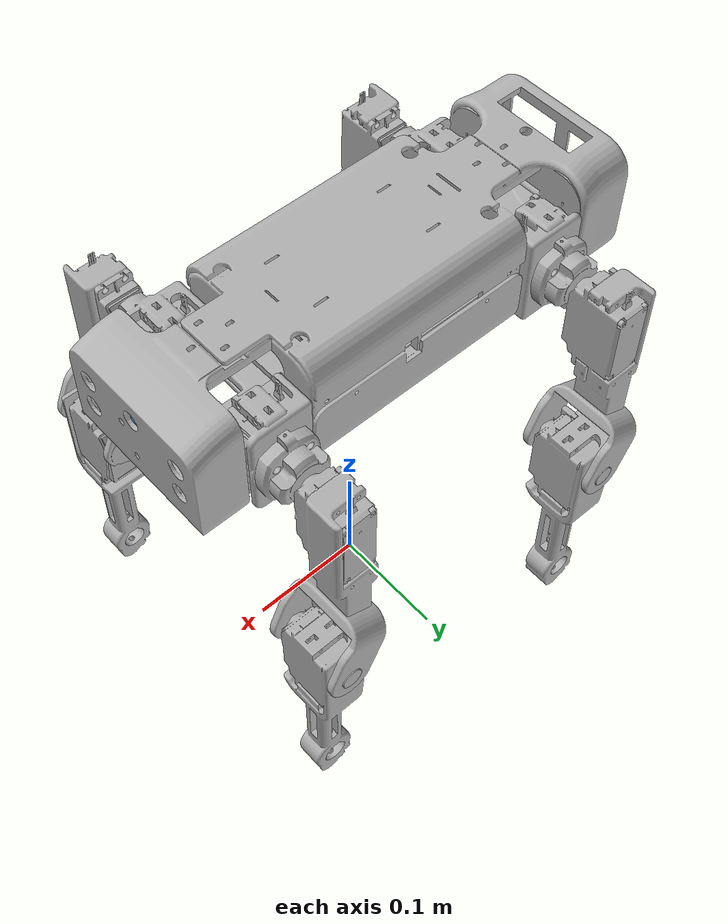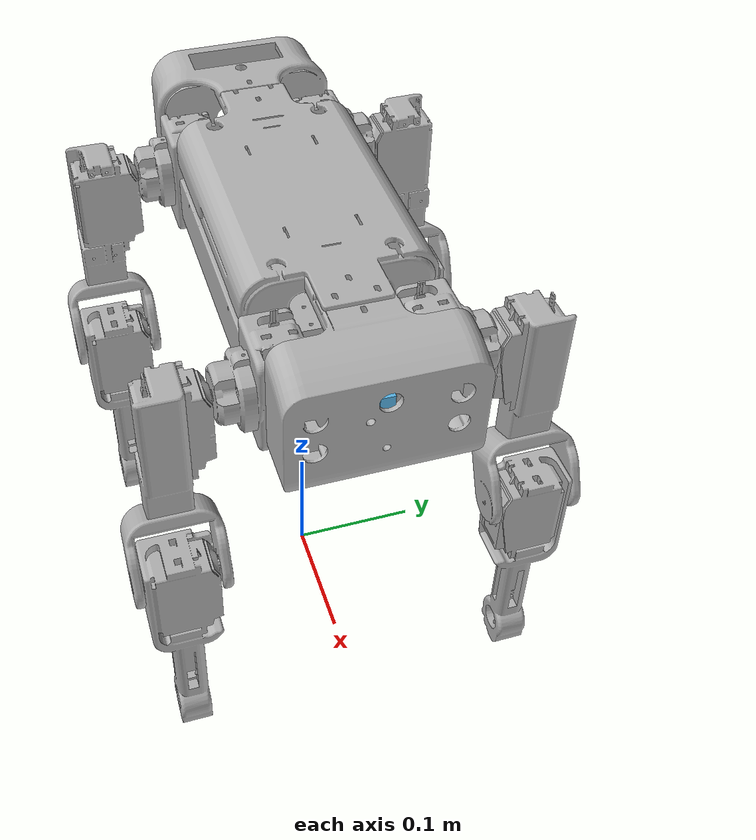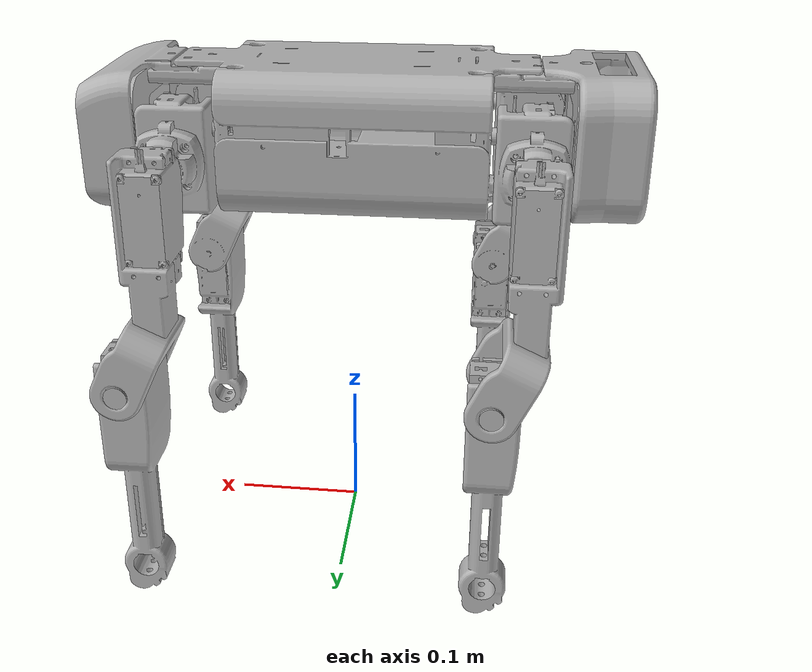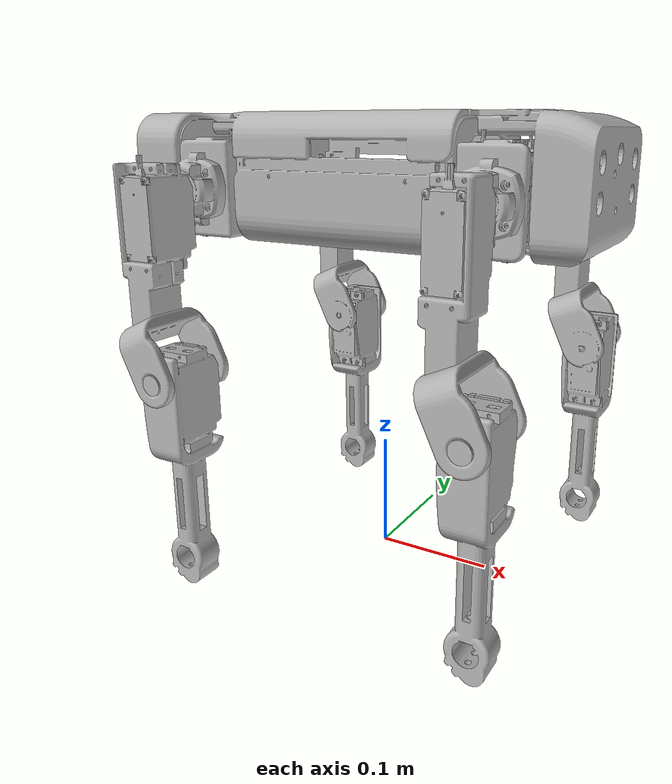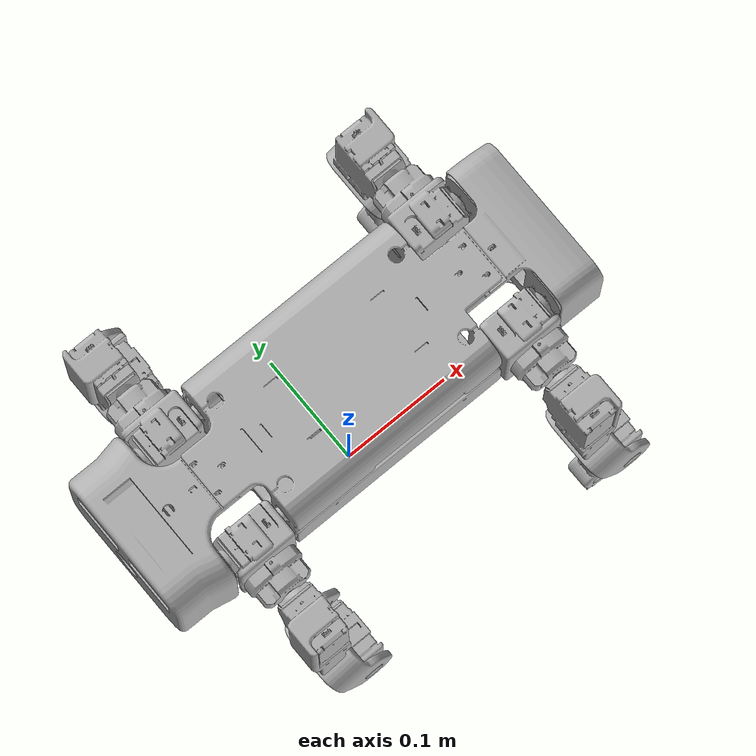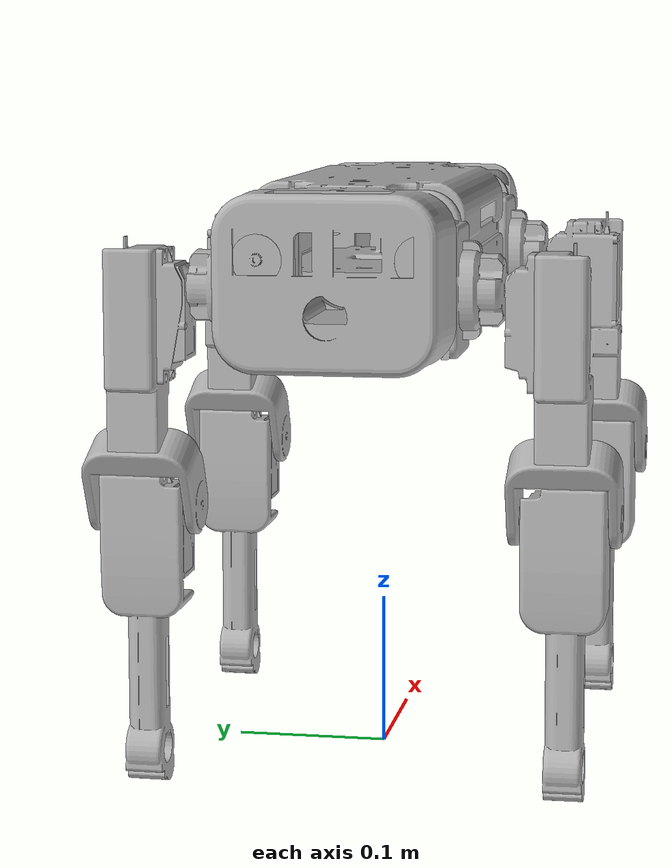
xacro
<?xml version="1.0" ?>
<robot name="bigspot" xmlns:xacro="http://www.ros.org/wiki/xacro">

<xacro:include filename="$(find bigspot_description)/urdf/materials.xacro" />
<xacro:include filename="$(find bigspot_description)/urdf/bigspot.trans" />
<xacro:include filename="$(find bigspot_description)/urdf/bigspot.gazebo" />
<xacro:property name="camera_link" value="0.05" /> <!-- Size of square 'camera' box -->

<link name="base_link">
  <inertial>
    <origin xyz="-0.005924455452065034 -0.00013954843544972099 0.33234964114268223" rpy="0 0 0"/>
    <mass value="1.2002032804157028"/>
    <inertia ixx="0.003833" iyy="0.01767" izz="0.018171" ixy="-0.000152" iyz="-3.3e-05" ixz="-8e-05"/>
  </inertial>
  <visual>
    <origin xyz="0 0 0" rpy="0 0 0"/>
    <geometry>
      <mesh filename="package://bigspot_description/meshes/base_link.stl" scale="0.001 0.001 0.001"/>
    </geometry>
    <material name="silver"/>
  </visual>
  <collision>
    <origin xyz="0 0 0" rpy="0 0 0"/>
    <geometry>
      <mesh filename="package://bigspot_description/meshes/base_link.stl" scale="0.001 0.001 0.001"/>
    </geometry>
  </collision>
</link>

<joint name="ir_front_joint" type="fixed">
    <axis xyz="0 1 0" />
    <origin rpy="0 0 0" xyz="0.18 0 0.35" />
    <parent link="base_link"/>
    <child link="base_ir_front"/>
</joint>

<link name="base_ir_front">
    <collision>
      <origin xyz="0 0 0" rpy="0 0 0"/>
      <geometry>
        <box size="0.01 0.01 0.01"/>
      </geometry>
    </collision>
    <visual>
      <origin xyz="0 0 0" rpy="0 0 0"/>
      <geometry>
        <box size="0.01 0.01 0.01"/>
      </geometry>
    </visual>
    <inertial>
      <mass value="1e-5" />
      <origin xyz="0 0 0" rpy="0 0 0"/>
      <inertia ixx="1e-6" ixy="0" ixz="0" iyy="1e-6" iyz="0"      izz="1e-6" />
    </inertial>
</link>

<link name="FRS_1">
  <inertial>
    <origin xyz="-0.03262402906297844 -0.008891213440249235 -0.01859885653575638" rpy="0 0 0"/>
    <mass value="0.2179660102657959"/>
    <inertia ixx="0.00014" iyy="0.000135" izz="9.7e-05" ixy="2e-06" iyz="-0.0" ixz="-3e-06"/>
  </inertial>
  <visual>
    <origin xyz="-0.152485 0.048774 -0.341762" rpy="0 0 0"/>
    <geometry>
      <mesh filename="package://bigspot_description/meshes/FRS_1.stl" scale="0.001 0.001 0.001"/>
    </geometry>
    <material name="silver"/>
  </visual>
  <collision>
    <origin xyz="-0.152485 0.048774 -0.341762" rpy="0 0 0"/>
    <geometry>
      <mesh filename="package://bigspot_description/meshes/FRS_1.stl" scale="0.001 0.001 0.001"/>
    </geometry>
  </collision>
</link>

<link name="FRL_1">
  <inertial>
    <origin xyz="0.0038775817781630667 -0.033503810432042994 -0.051270367340440826" rpy="0 0 0"/>
    <mass value="0.2533070021724165"/>
    <inertia ixx="0.000608" iyy="0.000566" izz="0.000103" ixy="4e-06" iyz="-3.8e-05" ixz="4e-05"/>
  </inertial>
  <visual>
    <origin xyz="-0.121434 0.09266 -0.322919" rpy="0 0 0"/>
    <geometry>
      <mesh filename="package://bigspot_description/meshes/FRL_1.stl" scale="0.001 0.001 0.001"/>
    </geometry>
    <material name="silver"/>
  </visual>
  <collision>
    <origin xyz="-0.121434 0.09266 -0.322919" rpy="0 0 0"/>
    <geometry>
      <mesh filename="package://bigspot_description/meshes/FRL_1.stl" scale="0.001 0.001 0.001"/>
    </geometry>
  </collision>
</link>

<link name="FRF_1">
  <inertial>
    <origin xyz="-0.001869412585041974 -0.03622957158869643 -0.04650897056843453" rpy="0 0 0"/>
    <mass value="0.25008271350190114"/>
    <inertia ixx="0.000701" iyy="0.000678" izz="7e-05" ixy="0.0" iyz="2e-06" ixz="9e-06"/>
  </inertial>
  <visual>
    <origin xyz="-0.145661 0.096431 -0.182302" rpy="0 0 0"/>
    <geometry>
      <mesh filename="package://bigspot_description/meshes/FRF_1.stl" scale="0.001 0.001 0.001"/>
    </geometry>
    <material name="silver"/>
  </visual>
  <collision>
    <origin xyz="-0.145661 0.096431 -0.182302" rpy="0 0 0"/>
    <geometry>
      <mesh filename="package://bigspot_description/meshes/FRF_1.stl" scale="0.001 0.001 0.001"/>
    </geometry>
  </collision>
</link>

<link name="FLS_1">
  <inertial>
    <origin xyz="-0.032502651385048306 0.008982081400929244 -0.01876110043924245" rpy="0 0 0"/>
    <mass value="0.2168042558568771"/>
    <inertia ixx="0.000138" iyy="0.000133" izz="9.6e-05" ixy="-1e-06" iyz="0.0" ixz="-4e-06"/>
  </inertial>
  <visual>
    <origin xyz="-0.152487 -0.049214 -0.341737" rpy="0 0 0"/>
    <geometry>
      <mesh filename="package://bigspot_description/meshes/FLS_1.stl" scale="0.001 0.001 0.001"/>
    </geometry>
    <material name="silver"/>
  </visual>
  <collision>
    <origin xyz="-0.152487 -0.049214 -0.341737" rpy="0 0 0"/>
    <geometry>
      <mesh filename="package://bigspot_description/meshes/FLS_1.stl" scale="0.001 0.001 0.001"/>
    </geometry>
  </collision>
</link>

<link name="FLL_1">
  <inertial>
    <origin xyz="0.0038795073898601623 0.033676971098066916 -0.0511565901145839" rpy="0 0 0"/>
    <mass value="0.2533070083934759"/>
    <inertia ixx="0.000608" iyy="0.000566" izz="0.000103" ixy="-4e-06" iyz="4e-05" ixz="4e-05"/>
  </inertial>
  <visual>
    <origin xyz="-0.12144 -0.092922 -0.323041" rpy="0 0 0"/>
    <geometry>
      <mesh filename="package://bigspot_description/meshes/FLL_1.stl" scale="0.001 0.001 0.001"/>
    </geometry>
    <material name="silver"/>
  </visual>
  <collision>
    <origin xyz="-0.12144 -0.092922 -0.323041" rpy="0 0 0"/>
    <geometry>
      <mesh filename="package://bigspot_description/meshes/FLL_1.stl" scale="0.001 0.001 0.001"/>
    </geometry>
  </collision>
</link>

<link name="FLF_1">
  <inertial>
    <origin xyz="-0.001867050204165388 0.036386780395052415 -0.04638544366195871" rpy="0 0 0"/>
    <mass value="0.25008282200400833"/>
    <inertia ixx="0.000701" iyy="0.000678" izz="7e-05" ixy="-0.0" iyz="-0.0" ixz="9e-06"/>
  </inertial>
  <visual>
    <origin xyz="-0.145667 -0.097168 -0.182437" rpy="0 0 0"/>
    <geometry>
      <mesh filename="package://bigspot_description/meshes/FLF_1.stl" scale="0.001 0.001 0.001"/>
    </geometry>
    <material name="silver"/>
  </visual>
  <collision>
    <origin xyz="-0.145667 -0.097168 -0.182437" rpy="0 0 0"/>
    <geometry>
      <mesh filename="package://bigspot_description/meshes/FLF_1.stl" scale="0.001 0.001 0.001"/>
    </geometry>
  </collision>
</link>

<link name="RRS_1">
  <inertial>
    <origin xyz="0.0327134074105363 -0.008946282789402397 -0.01858381030389067" rpy="0 0 0"/>
    <mass value="0.2178784733170752"/>
    <inertia ixx="0.000139" iyy="0.000135" izz="9.7e-05" ixy="-2e-06" iyz="-0.0" ixz="3e-06"/>
  </inertial>
  <visual>
    <origin xyz="0.164823 0.048791 -0.341723" rpy="0 0 0"/>
    <geometry>
      <mesh filename="package://bigspot_description/meshes/RRS_1.stl" scale="0.001 0.001 0.001"/>
    </geometry>
    <material name="silver"/>
  </visual>
  <collision>
    <origin xyz="0.164823 0.048791 -0.341723" rpy="0 0 0"/>
    <geometry>
      <mesh filename="package://bigspot_description/meshes/RRS_1.stl" scale="0.001 0.001 0.001"/>
    </geometry>
  </collision>
</link>

<link name="RRL_1">
  <inertial>
    <origin xyz="0.0005644107989059011 -0.03365254077769543 -0.05152345693558058" rpy="0 0 0"/>
    <mass value="0.25444871582041645"/>
    <inertia ixx="0.000615" iyy="0.000574" izz="0.000105" ixy="0.0" iyz="-4e-05" ixz="4.8e-05"/>
  </inertial>
  <visual>
    <origin xyz="0.133775 0.092485 -0.323" rpy="0 0 0"/>
    <geometry>
      <mesh filename="package://bigspot_description/meshes/RRL_1.stl" scale="0.001 0.001 0.001"/>
    </geometry>
    <material name="silver"/>
  </visual>
  <collision>
    <origin xyz="0.133775 0.092485 -0.323" rpy="0 0 0"/>
    <geometry>
      <mesh filename="package://bigspot_description/meshes/RRL_1.stl" scale="0.001 0.001 0.001"/>
    </geometry>
  </collision>
</link>

<link name="RRF_1">
  <inertial>
    <origin xyz="-0.0015923497064600778 -0.03624611498348912 -0.0465087745386944" rpy="0 0 0"/>
    <mass value="0.2500550328866579"/>
    <inertia ixx="0.0007" iyy="0.000678" izz="7e-05" ixy="1e-06" iyz="2e-06" ixz="1.1e-05"/>
  </inertial>
  <visual>
    <origin xyz="0.111933 0.096468 -0.181888" rpy="0 0 0"/>
    <geometry>
      <mesh filename="package://bigspot_description/meshes/RRF_1.stl" scale="0.001 0.001 0.001"/>
    </geometry>
    <material name="silver"/>
  </visual>
  <collision>
    <origin xyz="0.111933 0.096468 -0.181888" rpy="0 0 0"/>
    <geometry>
      <mesh filename="package://bigspot_description/meshes/RRF_1.stl" scale="0.001 0.001 0.001"/>
    </geometry>
  </collision>
</link>

<link name="RLS_1">
  <inertial>
    <origin xyz="0.03270821123980758 0.008996243250212595 -0.018554272527578353" rpy="0 0 0"/>
    <mass value="0.21782970948658575"/>
    <inertia ixx="0.000139" iyy="0.000135" izz="9.7e-05" ixy="2e-06" iyz="1e-06" ixz="3e-06"/>
  </inertial>
  <visual>
    <origin xyz="0.164822 -0.049198 -0.341698" rpy="0 0 0"/>
    <geometry>
      <mesh filename="package://bigspot_description/meshes/RLS_1.stl" scale="0.001 0.001 0.001"/>
    </geometry>
    <material name="silver"/>
  </visual>
  <collision>
    <origin xyz="0.164822 -0.049198 -0.341698" rpy="0 0 0"/>
    <geometry>
      <mesh filename="package://bigspot_description/meshes/RLS_1.stl" scale="0.001 0.001 0.001"/>
    </geometry>
  </collision>
</link>

<link name="RLL_1">
  <inertial>
    <origin xyz="0.0005648602121980373 0.03377765945377083 -0.051441442055425946" rpy="0 0 0"/>
    <mass value="0.254448653712132"/>
    <inertia ixx="0.000615" iyy="0.000574" izz="0.000105" ixy="-0.0" iyz="4.1e-05" ixz="4.8e-05"/>
  </inertial>
  <visual>
    <origin xyz="0.133774 -0.092964 -0.323081" rpy="0 0 0"/>
    <geometry>
      <mesh filename="package://bigspot_description/meshes/RLL_1.stl" scale="0.001 0.001 0.001"/>
    </geometry>
    <material name="silver"/>
  </visual>
  <collision>
    <origin xyz="0.133774 -0.092964 -0.323081" rpy="0 0 0"/>
    <geometry>
      <mesh filename="package://bigspot_description/meshes/RLL_1.stl" scale="0.001 0.001 0.001"/>
    </geometry>
  </collision>
</link>

<link name="RLF_1">
  <inertial>
    <origin xyz="-0.0015918551718841906 0.03635900100429153 -0.04642040795218652" rpy="0 0 0"/>
    <mass value="0.2500551183488915"/>
    <inertia ixx="0.0007" iyy="0.000678" izz="7e-05" ixy="-1e-06" iyz="-1e-06" ixz="1.1e-05"/>
  </inertial>
  <visual>
    <origin xyz="0.111932 -0.09729 -0.181979" rpy="0 0 0"/>
    <geometry>
      <mesh filename="package://bigspot_description/meshes/RLF_1.stl" scale="0.001 0.001 0.001"/>
    </geometry>
    <material name="silver"/>
  </visual>
  <collision>
    <origin xyz="0.111932 -0.09729 -0.181979" rpy="0 0 0"/>
    <geometry>
      <mesh filename="package://bigspot_description/meshes/RLF_1.stl" scale="0.001 0.001 0.001"/>
    </geometry>
  </collision>
</link>

<joint name="FRS_Joint" type="revolute">
  <origin xyz="0.152485 -0.048774 0.341762" rpy="0 0 0"/>
  <parent link="base_link"/>
  <child link="FRS_1"/>
  <axis xyz="-0.999998 3e-05 0.001745"/>
  <limit upper="0.523599" lower="-0.349066" effort="30" velocity="8"/>
</joint>

<joint name="FRL_Joint" type="revolute">
  <origin xyz="-0.031051 -0.043886 -0.018843" rpy="0 0 0"/>
  <parent link="FRS_1"/>
  <child link="FRL_1"/>
  <axis xyz="2.6e-05 0.999998 -0.002125"/>
  <limit upper="1.570796" lower="-1.570796" effort="30" velocity="8"/>
</joint>

<joint name="FRF_Joint" type="revolute">
  <origin xyz="0.024227 -0.003771 -0.140617" rpy="0 0 0"/>
  <parent link="FRL_1"/>
  <child link="FRF_1"/>
  <axis xyz="2.6e-05 0.999998 -0.002125"/>
  <limit upper="0.0" lower="-2.617994" effort="30" velocity="8"/>
</joint>

<joint name="FLS_Joint" type="revolute">
  <origin xyz="0.152487 0.049214 0.341737" rpy="0 0 0"/>
  <parent link="base_link"/>
  <child link="FLS_1"/>
  <axis xyz="-0.999998 3e-05 0.001745"/>
  <limit upper="0.349066" lower="-0.523599" effort="30" velocity="8"/>
</joint>

<joint name="FLL_Joint" type="revolute">
  <origin xyz="-0.031047 0.043708 -0.018696" rpy="0 0 0"/>
  <parent link="FLS_1"/>
  <child link="FLL_1"/>
  <axis xyz="3.9e-05 0.999985 0.005513"/>
  <limit upper="1.570796" lower="-1.570796" effort="30" velocity="8"/>
</joint>

<joint name="FLF_Joint" type="revolute">
  <origin xyz="0.024227 0.004246 -0.140604" rpy="0 0 0"/>
  <parent link="FLL_1"/>
  <child link="FLF_1"/>
  <axis xyz="-3.9e-05 -0.999985 -0.005513"/>
  <limit upper="2.617994" lower="0.0" effort="30" velocity="8"/>
</joint>

<joint name="RRS_Joint" type="revolute">
  <origin xyz="-0.164823 -0.048791 0.341723" rpy="0 0 0"/>
  <parent link="base_link"/>
  <child link="RRS_1"/>
  <axis xyz="-0.999998 7e-06 -0.001745"/>
  <limit upper="0.523599" lower="-0.349066" effort="30" velocity="8"/>
</joint>

<joint name="RRL_Joint" type="revolute">
  <origin xyz="0.031048 -0.043694 -0.018723" rpy="0 0 0"/>
  <parent link="RRS_1"/>
  <child link="RRL_1"/>
  <axis xyz="-1.5e-05 -0.999988 0.00488"/>
  <limit upper="1.570796" lower="-1.570796" effort="30" velocity="8"/>
</joint>

<joint name="RRF_Joint" type="revolute">
  <origin xyz="0.021842 -0.003983 -0.141112" rpy="0 0 0"/>
  <parent link="RRL_1"/>
  <child link="RRF_1"/>
  <axis xyz="-0.004077 0.999989 -0.002405"/>
  <limit upper="0.0" lower="-2.792527" effort="30" velocity="8"/>
</joint>

<joint name="RLS_Joint" type="revolute">
  <origin xyz="-0.164822 0.049198 0.341698" rpy="0 0 0"/>
  <parent link="base_link"/>
  <child link="RLS_1"/>
  <axis xyz="-0.999998 7e-06 -0.001745"/>
  <limit upper="0.349066" lower="-0.523599" effort="30" velocity="8"/>
</joint>

<joint name="RLL_Joint" type="revolute">
  <origin xyz="0.031048 0.043766 -0.018617" rpy="0 0 0"/>
  <parent link="RLS_1"/>
  <child link="RLL_1"/>
  <axis xyz="6e-06 -0.999973 -0.007312"/>
  <limit upper="1.570796" lower="-1.570796" effort="30" velocity="8"/>
</joint>

<joint name="RLF_Joint" type="revolute">
  <origin xyz="0.021842 0.004326 -0.141102" rpy="0 0 0"/>
  <parent link="RLL_1"/>
  <child link="RLF_1"/>
  <axis xyz="-0.004087 -0.99998 -0.004837"/>
  <limit upper="2.792527" lower="0.0" effort="30" velocity="8"/>
</joint>

</robot>

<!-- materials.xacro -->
<robot name="bigspot" xmlns:xacro="http://www.ros.org/wiki/xacro" >

<material name="silver">
  <color rgba="0.700 0.700 0.700 1.000"/>
</material>
<material name="blue">
  <color rgba="0.0 0.0 0.8 1.0"/>
</material>
<material name="green">
  <color rgba="0.0 0.8 0.0 1.0"/>
</material>
<material name="gray">
  <color rgba="0.7 0.7 0.7 1.0"/>
</material>
<material name="darkgray">
  <color rgba="0.3 0.3 0.3 1.0"/>
</material>
<material name="red">
  <color rgba="0.8 0.0 0.0 1.0"/>
</material>
<material name="white">
  <color rgba="1.0 1.0 1.0 1.0"/>
</material>
<material name="yellow">
  <color rgba="0.8 0.8 0.0 1.0"/>
</material>
</robot>

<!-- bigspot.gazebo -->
<robot name="bigspot" xmlns:xacro="http://www.ros.org/wiki/xacro" >

<xacro:property name="body_color" value="Gazebo/Silver" />

<!-- ROS control plugin -->
<gazebo>
  <plugin name="gazebo_ros_control" filename="libgazebo_ros_control.so">
    <robotNamespace>bigspot_controller</robotNamespace>
  </plugin>
</gazebo>

<!-- IMU sensor -->
<gazebo reference="base_link">
  <material>${body_color}</material>
  <gravity>true</gravity>
  <sensor name="imu_sensor" type="imu">
    <always_on>true</always_on>
    <update_rate>100</update_rate>
    <visualize>true</visualize>
    <topic>__default_topic__</topic>
    <plugin filename="libgazebo_ros_imu_sensor.so" name="imu_plugin">
      <topicName>bigspot_imu/base_link_orientation</topicName>
      <bodyName>imu_link</bodyName>
      <updateRateHZ>15.0</updateRateHZ>
      <gaussianNoise>0.0</gaussianNoise>
      <xyzOffset>0 0 0</xyzOffset>
      <rpyOffset>0 0 0</rpyOffset>
      <frameName>base_link</frameName>
      <initialOrientationAsReference>false</initialOrientationAsReference>
    </plugin>
    <pose>0 0 0 0 0 0</pose>
  </sensor>

</gazebo>

<!-- Joint state publisher plugin -->
<gazebo>
  <plugin name="joint_state_publisher" filename="libgazebo_ros_joint_state_publisher.so">
      <robotNamespace>bigspot_gazebo</robotNamespace>
      <jointName>FRS_Joint, FRL_Joint, FRF_Joint,
                 FLS_Joint, FLL_Joint, FLF_Joint,
                 RRS_Joint, RRL_Joint, RRF_Joint,
                 RLS_Joint, RLL_Joint, RLF_Joint</jointName>
      <updateRate>100</updateRate>
  </plugin>
</gazebo>

<!-- camera -->
<gazebo reference="camera_link">
  <sensor type="camera" name="camera1">
    <update_rate>30.0</update_rate>
    <camera name="head">
      <horizontal_fov>1.3962634</horizontal_fov>
      <image>
        <width>800</width>
        <height>800</height>
        <format>R8G8B8</format>
      </image>
      <clip>
        <near>0.02</near>
        <far>300</far>
      </clip>
      <noise>
        <type>gaussian</type>
        <!-- Noise is sampled independently per pixel on each frame.
             That pixel's noise value is added to each of its color
             channels, which at that point lie in the range [0,1]. -->
        <mean>0.0</mean>
        <stddev>0.007</stddev>
      </noise>
    </camera>
    <plugin name="camera_controller" filename="libgazebo_ros_camera.so">
      <alwaysOn>true</alwaysOn>
      <updateRate>60.0</updateRate>
      <cameraName>bigspot/camera1</cameraName>
      <imageTopicName>image_raw</imageTopicName>
      <cameraInfoTopicName>camera_info</cameraInfoTopicName>
      <frameName>camera_link</frameName>
      <hackBaseline>0.07</hackBaseline>
      <distortionK1>0.0</distortionK1>
      <distortionK2>0.0</distortionK2>
      <distortionK3>0.0</distortionK3>
      <distortionT1>0.0</distortionT1>
      <distortionT2>0.0</distortionT2>
    </plugin>
  </sensor>
</gazebo>

<gazebo reference="display_screen_link">
  <visual>
    <plugin name="display_video_controller" filename="libgazebo_ros_video.so">
      <topicName>image</topicName>
      <height>120</height>
      <width>160</width>
    </plugin>
  </visual>
</gazebo>

<gazebo reference="base_ir_front">
   <sensor type="ray" name="TeraRanger">
      <pose>0 0 0 0 0 0</pose>
      <visualize>true</visualize>
      <update_rate>50</update_rate>
      <ray>
         <scan>
            <horizontal>
               <samples>10</samples>
               <resolution>1</resolution>
               <min_angle>-0.14835</min_angle>
               <max_angle>0.14835</max_angle>
            </horizontal>
            <vertical>
               <samples>10</samples>
               <resolution>1</resolution>
               <min_angle>-0.14835</min_angle>
               <max_angle>0.14835</max_angle>
            </vertical>
         </scan>
         <range>
            <min>0.01</min>
            <max>2</max>
            <resolution>0.02</resolution>
         </range>
      </ray>
      <plugin filename="libgazebo_ros_range.so" name="gazebo_ros_range">
         <gaussianNoise>0.005</gaussianNoise>
         <alwaysOn>true</alwaysOn>
         <updateRate>50</updateRate>
         <topicName>bigspot_ultrasonic/sonic_dist</topicName>
         <frameName>base_ir_front</frameName>
         <radiation>INFRARED</radiation>
         <fov>0.2967</fov>
      </plugin>
   </sensor>
</gazebo>

<gazebo reference="FLF_1">
  <material>${body_color}</material>
  <mu1>1.0</mu1>
  <mu2>1.0</mu2>
  <minDepth>0.0002</minDepth>
  <kp  value="1000000.0"/>
  <kd  value="100.0"/>
</gazebo>

<gazebo reference="RRS_1">
  <material>${body_color}</material>
  <mu1>1.0</mu1>
  <mu2>1.0</mu2>
  <selfCollide>true</selfCollide>
</gazebo>

<gazebo reference="RRL_1">
  <material>${body_color}</material>
  <mu1>1.0</mu1>
  <mu2>1.0</mu2>
</gazebo>

<gazebo reference="RRF_1">
  <material>${body_color}</material>
  <mu1>1.0</mu1>
  <mu2>1.0</mu2>
  <minDepth>0.0002</minDepth>
  <kp  value="1000000.0"/>
  <kd  value="100.0"/>
</gazebo>

<gazebo reference="RLS_1">
  <material>${body_color}</material>
  <mu1>1.0</mu1>
  <mu2>1.0</mu2>
</gazebo>

<gazebo reference="RLF_1">
  <material>${body_color}</material>
  <mu1>1.0</mu1>
  <mu2>1.0</mu2>
  <minDepth>0.0002</minDepth>
  <kp  value="1000000.0"/>
  <kd  value="100.0"/>
</gazebo>

<gazebo reference="FLL_1">
  <material>${body_color}</material>
  <mu1>1.0</mu1>
  <mu2>1.0</mu2>
</gazebo>

<gazebo reference="FLS_1">
  <material>${body_color}</material>
  <mu1>1.0</mu1>
  <mu2>1.0</mu2>
</gazebo>

<gazebo reference="RLL_1">
  <material>${body_color}</material>
  <mu1>1.0</mu1>
  <mu2>1.0</mu2>
</gazebo>

<gazebo reference="FRS_1">
  <material>${body_color}</material>
  <mu1>1.0</mu1>
  <mu2>1.0</mu2>
</gazebo>

<gazebo reference="FRL_1">
  <material>${body_color}</material>
  <mu1>1.0</mu1>
  <mu2>1.0</mu2>
</gazebo>

<gazebo reference="FRF_1">
  <material>${body_color}</material>
  <mu1>1.0</mu1>
  <mu2>1.0</mu2>
  <minDepth>0.0002</minDepth>
  <kp  value="1000000.0"/>
  <kd  value="100.0"/>
</gazebo>

</robot>
